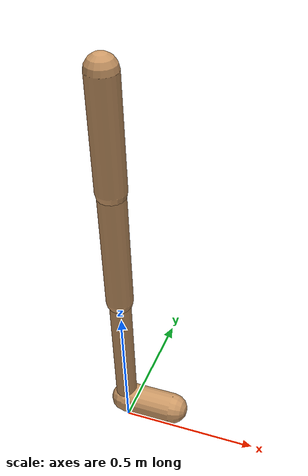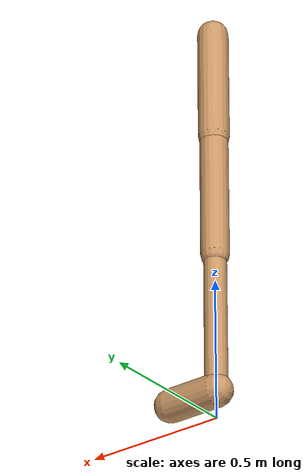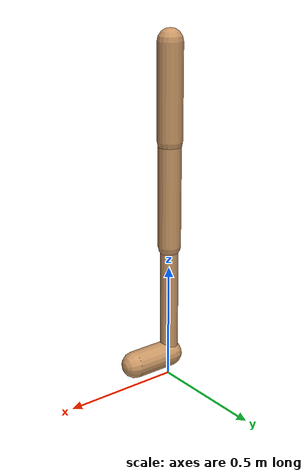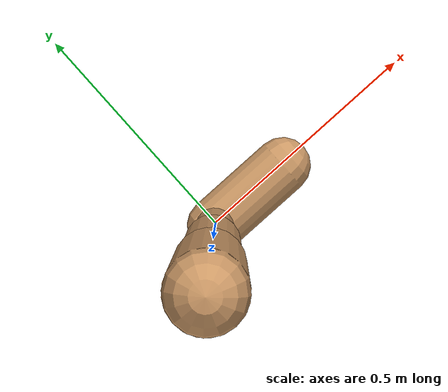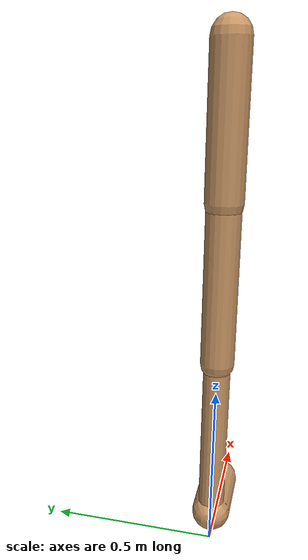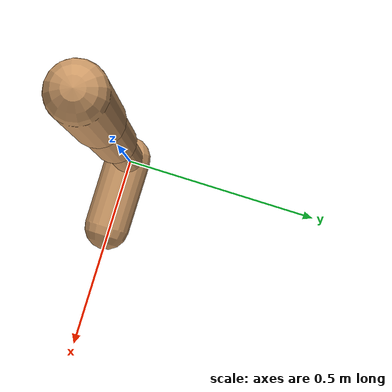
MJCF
<mujoco model="walker2d">
  <compiler angle="degree" coordinate="global" inertiafromgeom="true" />
  <default>
    <joint armature="0.01" damping=".1" limited="true" />
    <geom conaffinity="0" condim="3" contype="1" density="1000" friction="0.8 .1 .1" rgba="0.8 0.6 .4 1" />
  </default>
  <option integrator="RK4" timestep="0.002" />
  <worldbody>

    <body name="torso" pos="0 0 0.0025266741357670578">
      <joint armature="0" axis="1 0 0" damping="0" limited="false" name="ignorex" pos="0 0 0" stiffness="0" type="slide" />
      <joint armature="0" axis="0 0 1" damping="0" limited="false" name="ignorez" pos="0 0 0" ref="1.25" stiffness="0" type="slide" />
      <joint armature="0" axis="0 1 0" damping="0" limited="false" name="ignorey" pos="0 0 0" stiffness="0" type="hinge" />
      <geom fromto="0 0 1.45 0 0 1.05" name="torso_geom" size="0.05289560587002129" type="capsule" />
      <body name="thigh">
        <joint axis="0 -1 0" name="thigh_joint" pos="0 0 1.05" range="-150 0" type="hinge" />
        <geom fromto="0.0 0.0 1.05 0.0 0.0 0.5988031543567419" name="thigh_geom" size="0.048200628325008724" type="capsule" />
        <body name="leg" pos="0.0 0.0 -0.0011968456432580599">
          <joint axis="0 -1 0" name="leg_joint" pos="0 0 0.6" range="-150 0" type="hinge" />
          <geom fromto="0.0 0.0 0.6 0.0 0.0 0.09867017150749102" name="leg_geom" size="0.038560502660006976" type="capsule" />
          <body name="foot" pos="0.0 0.0 -0.0013298284925089832">
            <joint axis="0 -1 0" name="foot_joint" pos="0 0 0.1" range="-45 45" type="hinge" />
            <geom fromto="0.0 0.0 0.1 0.18360074635555956 0.0 0.1" name="foot_geom" size="0.05682010734403758" type="capsule" />
          </body>
        </body>
      </body>

      <body name="thigh_left">
        <joint axis="0 -1 0" name="thigh_left_joint" pos="0 0 1.05" range="-150 0" type="hinge" />
        <geom fromto="0.0 0.0 1.05 0.0 0.0 0.5988031543567419" name="thigh_left_geom" rgba=".7 .3 .6 1" size="0.048200628325008724" type="capsule" />
        <body name="leg_left" pos="0.0 0.0 -0.0011968456432580599">
          <joint axis="0 -1 0" name="leg_left_joint" pos="0 0 0.6" range="-150 0" type="hinge" />
          <geom fromto="0.0 0.0 0.6 0.0 0.0 0.09867017150749102" name="leg_left_geom" rgba=".7 .3 .6 1" size="0.038560502660006976" type="capsule" />
          <body name="foot_left" pos="0.0 0.0 -0.0013298284925089832">
            <joint axis="0 -1 0" name="foot_left_joint" pos="0 0 0.1" range="-45 45" type="hinge" />
            <geom fromto="0.0 0.0 0.1 0.18360074635555956 0.0 0.1" name="foot_left_geom" rgba=".7 .3 .6 1" size="0.05682010734403758" type="capsule" />
          </body>
        </body>
      </body>
    </body>
  </worldbody>
  <actuator>

    <motor ctrllimited="true" ctrlrange="-1.0 1.0" gear="100" joint="thigh_joint" />
    <motor ctrllimited="true" ctrlrange="-1.0 1.0" gear="100" joint="leg_joint" />
    <motor ctrllimited="true" ctrlrange="-1.0 1.0" gear="100" joint="foot_joint" />
    <motor ctrllimited="true" ctrlrange="-1.0 1.0" gear="100" joint="thigh_left_joint" />
    <motor ctrllimited="true" ctrlrange="-1.0 1.0" gear="100" joint="leg_left_joint" />
    <motor ctrllimited="true" ctrlrange="-1.0 1.0" gear="100" joint="foot_left_joint" />

  </actuator>
</mujoco>
